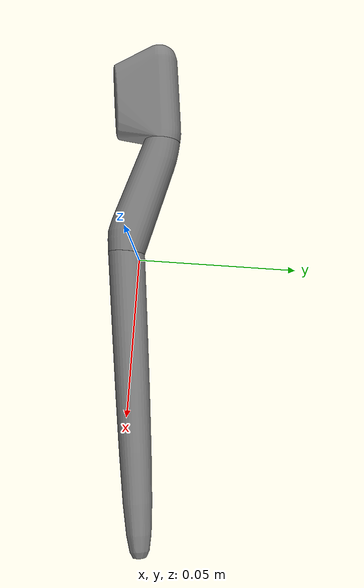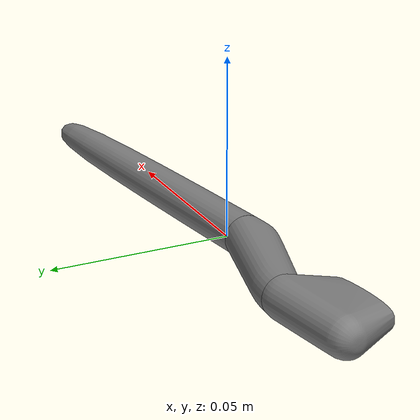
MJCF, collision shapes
<mujoco model="toothbrush">
  <compiler meshdir="."/>

  <asset>
    <mesh name="toothbrush" file="toothbrush.stl"/>
    <mesh name="toothbrush_collision_hull_000" file="toothbrush_collision_hull_000.stl"/>
    <mesh name="toothbrush_collision_hull_001" file="toothbrush_collision_hull_001.stl"/>
    <mesh name="toothbrush_collision_hull_002" file="toothbrush_collision_hull_002.stl"/>
  </asset>

  <worldbody>
    <body name="object">
      <freejoint name="object_joint"/>
      <geom name="object_visual" type="mesh" mesh="toothbrush"
            contype="0" conaffinity="0" group="2" rgba="0.9 0.9 0.8 1" mass="0"/>
      <geom name="toothbrush_collision_hull_000_collision" type="mesh" mesh="toothbrush_collision_hull_000"
            mass="0.0167" condim="6" friction="1.0 0.002 0.002" priority="1"/>
      <geom name="toothbrush_collision_hull_001_collision" type="mesh" mesh="toothbrush_collision_hull_001"
            mass="0.0167" condim="6" friction="1.0 0.002 0.002" priority="1"/>
      <geom name="toothbrush_collision_hull_002_collision" type="mesh" mesh="toothbrush_collision_hull_002"
            mass="0.0167" condim="6" friction="1.0 0.002 0.002" priority="1"/>
    </body>
  </worldbody>
</mujoco>
